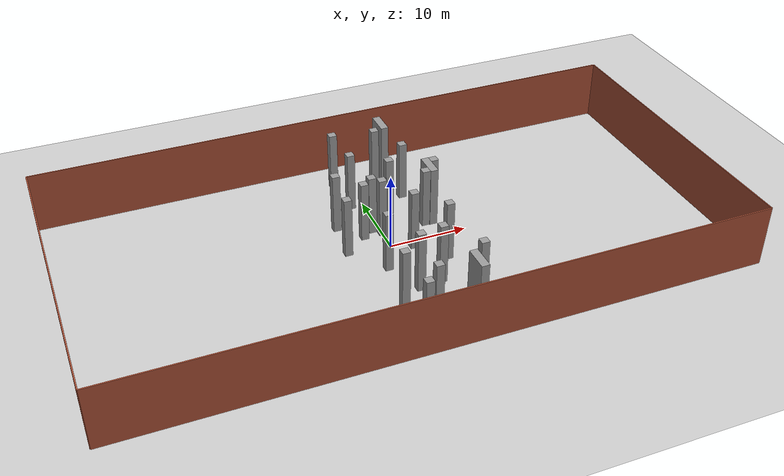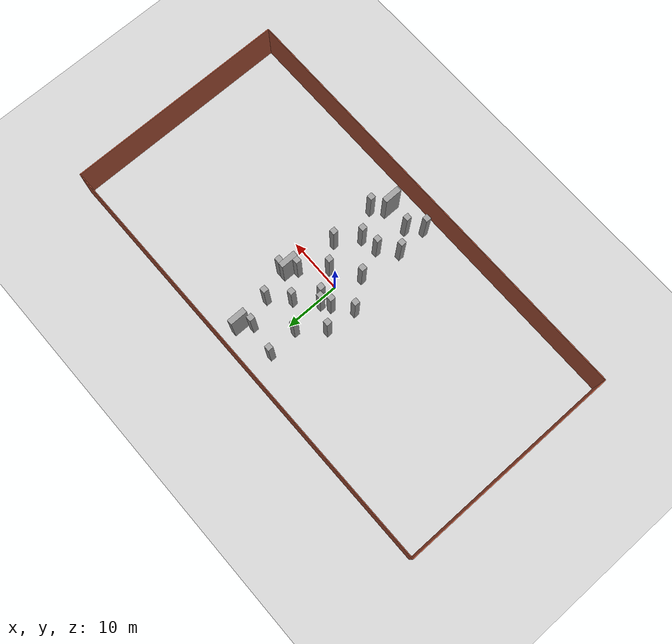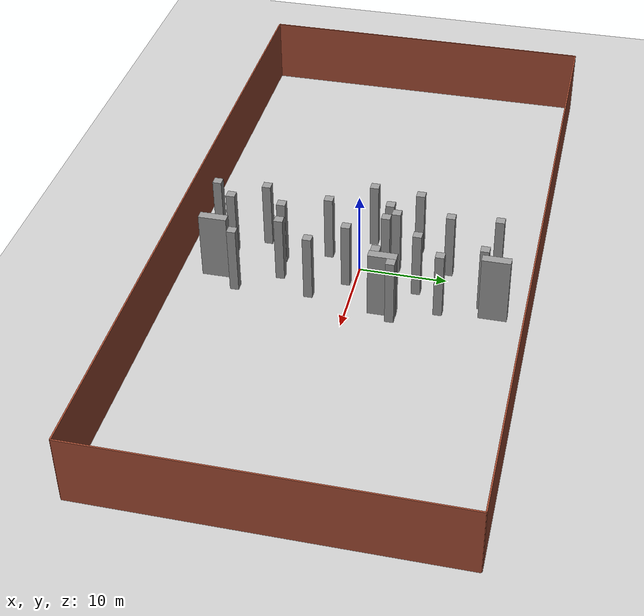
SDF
<sdf version="1.7">
 <world name="default">
  <model name="ground_plane">
   <static>1</static>
   <link name="link">
    <collision name="collision">
     <geometry><plane><normal>0 0 1</normal><size>100 100</size></plane></geometry>
     <surface>
      <contact><collide_bitmask>65535</collide_bitmask></contact>
      <friction><ode><mu>100</mu><mu2>50</mu2></ode></friction>
     </surface>
    </collision>
    <visual name="visual">
     <cast_shadows>0</cast_shadows>
     <geometry><plane><normal>0 0 1</normal><size>100 100</size></plane></geometry>
     <material>
      <script><uri>file://media/materials/scripts/gazebo.material</uri><name>Gazebo/Grey</name></script>
     </material>
    </visual>
   </link>
  </model>
  <model name="sim_room_rect">
   <link name="Wall_14">
    <collision name="Wall_14_Collision">
     <geometry><box><size>40 0.15 8</size></box></geometry>
     <pose>0 0 4 0 -0 0</pose>
    </collision>
    <visual name="Wall_14_Visual">
     <pose>0 0 4 0 -0 0</pose>
     <geometry><box><size>40 0.15 8</size></box></geometry>
     <material>
      <script><uri>file://media/materials/scripts/gazebo.material</uri><name>Gazebo/Bricks</name></script>
      <ambient>1 1 1 1</ambient>
     </material>
     <meta><layer>0</layer></meta>
    </visual>
    <pose>40 -0 0 0 -0 -1.5708</pose>
   </link>
   <link name="Wall_15">
    <collision name="Wall_15_Collision">
     <geometry><box><size>80 0.15 8</size></box></geometry>
     <pose>0 0 4 0 -0 0</pose>
    </collision>
    <visual name="Wall_15_Visual">
     <pose>0 0 4 0 -0 0</pose>
     <geometry><box><size>80 0.15 8</size></box></geometry>
     <material>
      <script><uri>file://media/materials/scripts/gazebo.material</uri><name>Gazebo/Bricks</name></script>
      <ambient>1 1 1 1</ambient>
     </material>
     <meta><layer>0</layer></meta>
    </visual>
    <pose>0 -20 0 0 -0 3.14159</pose>
   </link>
   <link name="Wall_16">
    <collision name="Wall_16_Collision">
     <geometry><box><size>40 0.15 8</size></box></geometry>
     <pose>0 0 4 0 -0 0</pose>
    </collision>
    <visual name="Wall_16_Visual">
     <pose>0 0 4 0 -0 0</pose>
     <geometry><box><size>40 0.15 8</size></box></geometry>
     <material>
      <script><uri>file://media/materials/scripts/gazebo.material</uri><name>Gazebo/Bricks</name></script>
      <ambient>1 1 1 1</ambient>
     </material>
     <meta><layer>0</layer></meta>
    </visual>
    <pose>-40 -0 0 0 -0 1.5708</pose>
   </link>
   <link name="Wall_19">
    <collision name="Wall_19_Collision">
     <geometry><box><size>80 0.15 8</size></box></geometry>
     <pose>0 0 4 0 -0 0</pose>
    </collision>
    <visual name="Wall_19_Visual">
     <pose>0 0 4 0 -0 0</pose>
     <geometry><box><size>80 0.15 8</size></box></geometry>
     <material>
      <script><uri>file://media/materials/scripts/gazebo.material</uri><name>Gazebo/Bricks</name></script>
      <ambient>1 1 1 1</ambient>
     </material>
     <meta><layer>0</layer></meta>
    </visual>
    <pose>0 20 0 0 -0 0</pose>
   </link>
   <static>1</static>
  </model>
  <model name="unit_box_static_clone_6">
   <link name="link">
    <inertial>
     <mass>1</mass>
     <inertia>
      <ixx>0.166667</ixx>
      <ixy>0</ixy>
      <ixz>0</ixz>
      <iyy>0.166667</iyy>
      <iyz>0</iyz>
      <izz>0.166667</izz>
     </inertia>
    </inertial>
    <visual name="visual">
     <geometry><box><size>1 1 8.00001</size></box></geometry>
     <material>
      <script><name>Gazebo/Grey</name><uri>file://media/materials/scripts/gazebo.material</uri></script>
      <shader type="pixel"/>
     </material>
    </visual>
    <collision name="collision">
     <geometry><box><size>1 1 8.00001</size></box></geometry>
     <surface>
      <friction>
       <ode><mu>1</mu><mu2>1</mu2><fdir1>0 0 0</fdir1><slip1>0</slip1><slip2>0</slip2></ode>
       <torsional>
        <coefficient>1</coefficient>
        <patch_radius>0</patch_radius>
        <surface_radius>0</surface_radius>
        <use_patch_radius>1</use_patch_radius>
        <ode><slip>0</slip></ode>
       </torsional>
      </friction>
      <bounce><restitution_coefficient>0</restitution_coefficient><threshold>1e+06</threshold></bounce>
      <contact>
       <collide_without_contact>0</collide_without_contact>
       <collide_without_contact_bitmask>1</collide_without_contact_bitmask>
       <collide_bitmask>1</collide_bitmask>
       <ode>
        <soft_cfm>0</soft_cfm>
        <soft_erp>0.2</soft_erp>
        <kp>1e+13</kp>
        <kd>1</kd>
        <max_vel>0.01</max_vel>
        <min_depth>0</min_depth>
       </ode>
       <bullet>
        <split_impulse>1</split_impulse>
        <split_impulse_penetration_threshold>-0.01</split_impulse_penetration_threshold>
        <soft_cfm>0</soft_cfm>
        <soft_erp>0.2</soft_erp>
        <kp>1e+13</kp>
        <kd>1</kd>
       </bullet>
      </contact>
     </surface>
    </collision>
   </link>
   <static>1</static>
   <pose>-5 6 4 0 -0 0</pose>
  </model>
  <model name="unit_box_static_clone_19">
   <link name="link">
    <inertial>
     <mass>1</mass>
     <inertia>
      <ixx>0.166667</ixx>
      <ixy>0</ixy>
      <ixz>0</ixz>
      <iyy>0.166667</iyy>
      <iyz>0</iyz>
      <izz>0.166667</izz>
     </inertia>
    </inertial>
    <visual name="visual">
     <geometry><box><size>1 1 8.00001</size></box></geometry>
     <material>
      <script><name>Gazebo/Grey</name><uri>file://media/materials/scripts/gazebo.material</uri></script>
      <shader type="pixel"/>
     </material>
    </visual>
    <collision name="collision">
     <geometry><box><size>1 1 8.00001</size></box></geometry>
     <surface>
      <friction>
       <ode><mu>1</mu><mu2>1</mu2><fdir1>0 0 0</fdir1><slip1>0</slip1><slip2>0</slip2></ode>
       <torsional>
        <coefficient>1</coefficient>
        <patch_radius>0</patch_radius>
        <surface_radius>0</surface_radius>
        <use_patch_radius>1</use_patch_radius>
        <ode><slip>0</slip></ode>
       </torsional>
      </friction>
      <bounce><restitution_coefficient>0</restitution_coefficient><threshold>1e+06</threshold></bounce>
      <contact>
       <collide_without_contact>0</collide_without_contact>
       <collide_without_contact_bitmask>1</collide_without_contact_bitmask>
       <collide_bitmask>1</collide_bitmask>
       <ode>
        <soft_cfm>0</soft_cfm>
        <soft_erp>0.2</soft_erp>
        <kp>1e+13</kp>
        <kd>1</kd>
        <max_vel>0.01</max_vel>
        <min_depth>0</min_depth>
       </ode>
       <bullet>
        <split_impulse>1</split_impulse>
        <split_impulse_penetration_threshold>-0.01</split_impulse_penetration_threshold>
        <soft_cfm>0</soft_cfm>
        <soft_erp>0.2</soft_erp>
        <kp>1e+13</kp>
        <kd>1</kd>
       </bullet>
      </contact>
     </surface>
    </collision>
   </link>
   <static>1</static>
   <pose>-2 15.4448 4 0 -0 0</pose>
  </model>
  <model name="unit_box_static_clone_20">
   <link name="link">
    <inertial>
     <mass>1</mass>
     <inertia>
      <ixx>0.166667</ixx>
      <ixy>0</ixy>
      <ixz>0</ixz>
      <iyy>0.166667</iyy>
      <iyz>0</iyz>
      <izz>0.166667</izz>
     </inertia>
    </inertial>
    <visual name="visual">
     <geometry><box><size>1 1 8.00001</size></box></geometry>
     <material>
      <script><name>Gazebo/Grey</name><uri>file://media/materials/scripts/gazebo.material</uri></script>
      <shader type="pixel"/>
     </material>
    </visual>
    <collision name="collision">
     <geometry><box><size>1 1 8.00001</size></box></geometry>
     <surface>
      <friction>
       <ode><mu>1</mu><mu2>1</mu2><fdir1>0 0 0</fdir1><slip1>0</slip1><slip2>0</slip2></ode>
       <torsional>
        <coefficient>1</coefficient>
        <patch_radius>0</patch_radius>
        <surface_radius>0</surface_radius>
        <use_patch_radius>1</use_patch_radius>
        <ode><slip>0</slip></ode>
       </torsional>
      </friction>
      <bounce><restitution_coefficient>0</restitution_coefficient><threshold>1e+06</threshold></bounce>
      <contact>
       <collide_without_contact>0</collide_without_contact>
       <collide_without_contact_bitmask>1</collide_without_contact_bitmask>
       <collide_bitmask>1</collide_bitmask>
       <ode>
        <soft_cfm>0</soft_cfm>
        <soft_erp>0.2</soft_erp>
        <kp>1e+13</kp>
        <kd>1</kd>
        <max_vel>0.01</max_vel>
        <min_depth>0</min_depth>
       </ode>
       <bullet>
        <split_impulse>1</split_impulse>
        <split_impulse_penetration_threshold>-0.01</split_impulse_penetration_threshold>
        <soft_cfm>0</soft_cfm>
        <soft_erp>0.2</soft_erp>
        <kp>1e+13</kp>
        <kd>1</kd>
       </bullet>
      </contact>
     </surface>
    </collision>
   </link>
   <static>1</static>
   <pose>3.47476 14.545 4 0 -0 0</pose>
  </model>
  <model name="unit_box_static_clone_22">
   <link name="link">
    <inertial>
     <mass>1</mass>
     <inertia>
      <ixx>0.166667</ixx>
      <ixy>0</ixy>
      <ixz>0</ixz>
      <iyy>0.166667</iyy>
      <iyz>0</iyz>
      <izz>0.166667</izz>
     </inertia>
    </inertial>
    <visual name="visual">
     <geometry><box><size>1 1 8.00001</size></box></geometry>
     <material>
      <script><name>Gazebo/Grey</name><uri>file://media/materials/scripts/gazebo.material</uri></script>
      <shader type="pixel"/>
     </material>
    </visual>
    <collision name="collision">
     <geometry><box><size>1 1 8.00001</size></box></geometry>
     <surface>
      <friction>
       <ode><mu>1</mu><mu2>1</mu2><fdir1>0 0 0</fdir1><slip1>0</slip1><slip2>0</slip2></ode>
       <torsional>
        <coefficient>1</coefficient>
        <patch_radius>0</patch_radius>
        <surface_radius>0</surface_radius>
        <use_patch_radius>1</use_patch_radius>
        <ode><slip>0</slip></ode>
       </torsional>
      </friction>
      <bounce><restitution_coefficient>0</restitution_coefficient><threshold>1e+06</threshold></bounce>
      <contact>
       <collide_without_contact>0</collide_without_contact>
       <collide_without_contact_bitmask>1</collide_without_contact_bitmask>
       <collide_bitmask>1</collide_bitmask>
       <ode>
        <soft_cfm>0</soft_cfm>
        <soft_erp>0.2</soft_erp>
        <kp>1e+13</kp>
        <kd>1</kd>
        <max_vel>0.01</max_vel>
        <min_depth>0</min_depth>
       </ode>
       <bullet>
        <split_impulse>1</split_impulse>
        <split_impulse_penetration_threshold>-0.01</split_impulse_penetration_threshold>
        <soft_cfm>0</soft_cfm>
        <soft_erp>0.2</soft_erp>
        <kp>1e+13</kp>
        <kd>1</kd>
       </bullet>
      </contact>
     </surface>
    </collision>
   </link>
   <static>1</static>
   <pose>7.81147 5.05751 4 0 -0 0</pose>
  </model>
  <model name="unit_box_static_clone_24">
   <link name="link">
    <inertial>
     <mass>1</mass>
     <inertia>
      <ixx>0.166667</ixx>
      <ixy>0</ixy>
      <ixz>0</ixz>
      <iyy>0.166667</iyy>
      <iyz>0</iyz>
      <izz>0.166667</izz>
     </inertia>
    </inertial>
    <visual name="visual">
     <geometry><box><size>1 1 8.00001</size></box></geometry>
     <material>
      <script><name>Gazebo/Grey</name><uri>file://media/materials/scripts/gazebo.material</uri></script>
      <shader type="pixel"/>
     </material>
    </visual>
    <collision name="collision">
     <geometry><box><size>1 1 8.00001</size></box></geometry>
     <surface>
      <friction>
       <ode><mu>1</mu><mu2>1</mu2><fdir1>0 0 0</fdir1><slip1>0</slip1><slip2>0</slip2></ode>
       <torsional>
        <coefficient>1</coefficient>
        <patch_radius>0</patch_radius>
        <surface_radius>0</surface_radius>
        <use_patch_radius>1</use_patch_radius>
        <ode><slip>0</slip></ode>
       </torsional>
      </friction>
      <bounce><restitution_coefficient>0</restitution_coefficient><threshold>1e+06</threshold></bounce>
      <contact>
       <collide_without_contact>0</collide_without_contact>
       <collide_without_contact_bitmask>1</collide_without_contact_bitmask>
       <collide_bitmask>1</collide_bitmask>
       <ode>
        <soft_cfm>0</soft_cfm>
        <soft_erp>0.2</soft_erp>
        <kp>1e+13</kp>
        <kd>1</kd>
        <max_vel>0.01</max_vel>
        <min_depth>0</min_depth>
       </ode>
       <bullet>
        <split_impulse>1</split_impulse>
        <split_impulse_penetration_threshold>-0.01</split_impulse_penetration_threshold>
        <soft_cfm>0</soft_cfm>
        <soft_erp>0.2</soft_erp>
        <kp>1e+13</kp>
        <kd>1</kd>
       </bullet>
      </contact>
     </surface>
    </collision>
   </link>
   <static>1</static>
   <pose>2.50825 7 4 0 -0 0</pose>
  </model>
  <model name="unit_box_static_clone_25">
   <link name="link">
    <inertial>
     <mass>1</mass>
     <inertia>
      <ixx>0.166667</ixx>
      <ixy>0</ixy>
      <ixz>0</ixz>
      <iyy>0.166667</iyy>
      <iyz>0</iyz>
      <izz>0.166667</izz>
     </inertia>
    </inertial>
    <visual name="visual">
     <geometry><box><size>1 1 8.00001</size></box></geometry>
     <material>
      <script><name>Gazebo/Grey</name><uri>file://media/materials/scripts/gazebo.material</uri></script>
      <shader type="pixel"/>
     </material>
    </visual>
    <collision name="collision">
     <geometry><box><size>1 1 8.00001</size></box></geometry>
     <surface>
      <friction>
       <ode><mu>1</mu><mu2>1</mu2><fdir1>0 0 0</fdir1><slip1>0</slip1><slip2>0</slip2></ode>
       <torsional>
        <coefficient>1</coefficient>
        <patch_radius>0</patch_radius>
        <surface_radius>0</surface_radius>
        <use_patch_radius>1</use_patch_radius>
        <ode><slip>0</slip></ode>
       </torsional>
      </friction>
      <bounce><restitution_coefficient>0</restitution_coefficient><threshold>1e+06</threshold></bounce>
      <contact>
       <collide_without_contact>0</collide_without_contact>
       <collide_without_contact_bitmask>1</collide_without_contact_bitmask>
       <collide_bitmask>1</collide_bitmask>
       <ode>
        <soft_cfm>0</soft_cfm>
        <soft_erp>0.2</soft_erp>
        <kp>1e+13</kp>
        <kd>1</kd>
        <max_vel>0.01</max_vel>
        <min_depth>0</min_depth>
       </ode>
       <bullet>
        <split_impulse>1</split_impulse>
        <split_impulse_penetration_threshold>-0.01</split_impulse_penetration_threshold>
        <soft_cfm>0</soft_cfm>
        <soft_erp>0.2</soft_erp>
        <kp>1e+13</kp>
        <kd>1</kd>
       </bullet>
      </contact>
     </surface>
    </collision>
   </link>
   <static>1</static>
   <pose>-1.57746 10 4 0 -0 0</pose>
  </model>
  <model name="unit_box_static_clone_28">
   <link name="link">
    <inertial>
     <mass>1</mass>
     <inertia>
      <ixx>0.166667</ixx>
      <ixy>0</ixy>
      <ixz>0</ixz>
      <iyy>0.166667</iyy>
      <iyz>0</iyz>
      <izz>0.166667</izz>
     </inertia>
    </inertial>
    <visual name="visual">
     <geometry><box><size>1 1 8.00001</size></box></geometry>
     <material>
      <script><name>Gazebo/Grey</name><uri>file://media/materials/scripts/gazebo.material</uri></script>
      <shader type="pixel"/>
     </material>
    </visual>
    <collision name="collision">
     <geometry><box><size>1 1 8.00001</size></box></geometry>
     <surface>
      <friction>
       <ode><mu>1</mu><mu2>1</mu2><fdir1>0 0 0</fdir1><slip1>0</slip1><slip2>0</slip2></ode>
       <torsional>
        <coefficient>1</coefficient>
        <patch_radius>0</patch_radius>
        <surface_radius>0</surface_radius>
        <use_patch_radius>1</use_patch_radius>
        <ode><slip>0</slip></ode>
       </torsional>
      </friction>
      <bounce><restitution_coefficient>0</restitution_coefficient><threshold>1e+06</threshold></bounce>
      <contact>
       <collide_without_contact>0</collide_without_contact>
       <collide_without_contact_bitmask>1</collide_without_contact_bitmask>
       <collide_bitmask>1</collide_bitmask>
       <ode>
        <soft_cfm>0</soft_cfm>
        <soft_erp>0.2</soft_erp>
        <kp>1e+13</kp>
        <kd>1</kd>
        <max_vel>0.01</max_vel>
        <min_depth>0</min_depth>
       </ode>
       <bullet>
        <split_impulse>1</split_impulse>
        <split_impulse_penetration_threshold>-0.01</split_impulse_penetration_threshold>
        <soft_cfm>0</soft_cfm>
        <soft_erp>0.2</soft_erp>
        <kp>1e+13</kp>
        <kd>1</kd>
       </bullet>
      </contact>
     </surface>
    </collision>
   </link>
   <static>1</static>
   <pose>-0.448273 -15 4 0 -0 0</pose>
  </model>
  <model name="unit_box_static_clone_29">
   <link name="link">
    <inertial>
     <mass>1</mass>
     <inertia>
      <ixx>0.166667</ixx>
      <ixy>0</ixy>
      <ixz>0</ixz>
      <iyy>0.166667</iyy>
      <iyz>0</iyz>
      <izz>0.166667</izz>
     </inertia>
    </inertial>
    <visual name="visual">
     <geometry><box><size>1 1 8.00001</size></box></geometry>
     <material>
      <script><name>Gazebo/Grey</name><uri>file://media/materials/scripts/gazebo.material</uri></script>
      <shader type="pixel"/>
     </material>
    </visual>
    <collision name="collision">
     <geometry><box><size>1 1 8.00001</size></box></geometry>
     <surface>
      <friction>
       <ode><mu>1</mu><mu2>1</mu2><fdir1>0 0 0</fdir1><slip1>0</slip1><slip2>0</slip2></ode>
       <torsional>
        <coefficient>1</coefficient>
        <patch_radius>0</patch_radius>
        <surface_radius>0</surface_radius>
        <use_patch_radius>1</use_patch_radius>
        <ode><slip>0</slip></ode>
       </torsional>
      </friction>
      <bounce><restitution_coefficient>0</restitution_coefficient><threshold>1e+06</threshold></bounce>
      <contact>
       <collide_without_contact>0</collide_without_contact>
       <collide_without_contact_bitmask>1</collide_without_contact_bitmask>
       <collide_bitmask>1</collide_bitmask>
       <ode>
        <soft_cfm>0</soft_cfm>
        <soft_erp>0.2</soft_erp>
        <kp>1e+13</kp>
        <kd>1</kd>
        <max_vel>0.01</max_vel>
        <min_depth>0</min_depth>
       </ode>
       <bullet>
        <split_impulse>1</split_impulse>
        <split_impulse_penetration_threshold>-0.01</split_impulse_penetration_threshold>
        <soft_cfm>0</soft_cfm>
        <soft_erp>0.2</soft_erp>
        <kp>1e+13</kp>
        <kd>1</kd>
       </bullet>
      </contact>
     </surface>
    </collision>
   </link>
   <static>1</static>
   <pose>6 -13 4 0 -0 0</pose>
  </model>
  <model name="unit_box_static_clone_32">
   <link name="link">
    <inertial>
     <mass>1</mass>
     <inertia>
      <ixx>0.166667</ixx>
      <ixy>0</ixy>
      <ixz>0</ixz>
      <iyy>0.166667</iyy>
      <iyz>0</iyz>
      <izz>0.166667</izz>
     </inertia>
    </inertial>
    <visual name="visual">
     <geometry><box><size>1 1 8.00001</size></box></geometry>
     <material>
      <script><name>Gazebo/Grey</name><uri>file://media/materials/scripts/gazebo.material</uri></script>
      <shader type="pixel"/>
     </material>
    </visual>
    <collision name="collision">
     <geometry><box><size>1 1 8.00001</size></box></geometry>
     <surface>
      <friction>
       <ode><mu>1</mu><mu2>1</mu2><fdir1>0 0 0</fdir1><slip1>0</slip1><slip2>0</slip2></ode>
       <torsional>
        <coefficient>1</coefficient>
        <patch_radius>0</patch_radius>
        <surface_radius>0</surface_radius>
        <use_patch_radius>1</use_patch_radius>
        <ode><slip>0</slip></ode>
       </torsional>
      </friction>
      <bounce><restitution_coefficient>0</restitution_coefficient><threshold>1e+06</threshold></bounce>
      <contact>
       <collide_without_contact>0</collide_without_contact>
       <collide_without_contact_bitmask>1</collide_without_contact_bitmask>
       <collide_bitmask>1</collide_bitmask>
       <ode>
        <soft_cfm>0</soft_cfm>
        <soft_erp>0.2</soft_erp>
        <kp>1e+13</kp>
        <kd>1</kd>
        <max_vel>0.01</max_vel>
        <min_depth>0</min_depth>
       </ode>
       <bullet>
        <split_impulse>1</split_impulse>
        <split_impulse_penetration_threshold>-0.01</split_impulse_penetration_threshold>
        <soft_cfm>0</soft_cfm>
        <soft_erp>0.2</soft_erp>
        <kp>1e+13</kp>
        <kd>1</kd>
       </bullet>
      </contact>
     </surface>
    </collision>
   </link>
   <static>1</static>
   <pose>0 -9 4 0 -0 0</pose>
  </model>
  <model name="unit_box_static_clone_34">
   <link name="link">
    <inertial>
     <mass>1</mass>
     <inertia>
      <ixx>0.166667</ixx>
      <ixy>0</ixy>
      <ixz>0</ixz>
      <iyy>0.166667</iyy>
      <iyz>0</iyz>
      <izz>0.166667</izz>
     </inertia>
    </inertial>
    <visual name="visual">
     <geometry><box><size>1 1 8.00001</size></box></geometry>
     <material>
      <script><name>Gazebo/Grey</name><uri>file://media/materials/scripts/gazebo.material</uri></script>
      <shader type="pixel"/>
     </material>
    </visual>
    <collision name="collision">
     <geometry><box><size>1 1 8.00001</size></box></geometry>
     <surface>
      <friction>
       <ode><mu>1</mu><mu2>1</mu2><fdir1>0 0 0</fdir1><slip1>0</slip1><slip2>0</slip2></ode>
       <torsional>
        <coefficient>1</coefficient>
        <patch_radius>0</patch_radius>
        <surface_radius>0</surface_radius>
        <use_patch_radius>1</use_patch_radius>
        <ode><slip>0</slip></ode>
       </torsional>
      </friction>
      <bounce><restitution_coefficient>0</restitution_coefficient><threshold>1e+06</threshold></bounce>
      <contact>
       <collide_without_contact>0</collide_without_contact>
       <collide_without_contact_bitmask>1</collide_without_contact_bitmask>
       <collide_bitmask>1</collide_bitmask>
       <ode>
        <soft_cfm>0</soft_cfm>
        <soft_erp>0.2</soft_erp>
        <kp>1e+13</kp>
        <kd>1</kd>
        <max_vel>0.01</max_vel>
        <min_depth>0</min_depth>
       </ode>
       <bullet>
        <split_impulse>1</split_impulse>
        <split_impulse_penetration_threshold>-0.01</split_impulse_penetration_threshold>
        <soft_cfm>0</soft_cfm>
        <soft_erp>0.2</soft_erp>
        <kp>1e+13</kp>
        <kd>1</kd>
       </bullet>
      </contact>
     </surface>
    </collision>
   </link>
   <static>1</static>
   <pose>5.58496 -4.59929 4 0 -0 0</pose>
  </model>
  <model name="unit_box_static_clone_35">
   <link name="link">
    <inertial>
     <mass>1</mass>
     <inertia>
      <ixx>0.166667</ixx>
      <ixy>0</ixy>
      <ixz>0</ixz>
      <iyy>0.166667</iyy>
      <iyz>0</iyz>
      <izz>0.166667</izz>
     </inertia>
    </inertial>
    <visual name="visual">
     <geometry><box><size>1 1 8.00001</size></box></geometry>
     <material>
      <script><name>Gazebo/Grey</name><uri>file://media/materials/scripts/gazebo.material</uri></script>
      <shader type="pixel"/>
     </material>
    </visual>
    <collision name="collision">
     <geometry><box><size>1 1 8.00001</size></box></geometry>
     <surface>
      <friction>
       <ode><mu>1</mu><mu2>1</mu2><fdir1>0 0 0</fdir1><slip1>0</slip1><slip2>0</slip2></ode>
       <torsional>
        <coefficient>1</coefficient>
        <patch_radius>0</patch_radius>
        <surface_radius>0</surface_radius>
        <use_patch_radius>1</use_patch_radius>
        <ode><slip>0</slip></ode>
       </torsional>
      </friction>
      <bounce><restitution_coefficient>0</restitution_coefficient><threshold>1e+06</threshold></bounce>
      <contact>
       <collide_without_contact>0</collide_without_contact>
       <collide_without_contact_bitmask>1</collide_without_contact_bitmask>
       <collide_bitmask>1</collide_bitmask>
       <ode>
        <soft_cfm>0</soft_cfm>
        <soft_erp>0.2</soft_erp>
        <kp>1e+13</kp>
        <kd>1</kd>
        <max_vel>0.01</max_vel>
        <min_depth>0</min_depth>
       </ode>
       <bullet>
        <split_impulse>1</split_impulse>
        <split_impulse_penetration_threshold>-0.01</split_impulse_penetration_threshold>
        <soft_cfm>0</soft_cfm>
        <soft_erp>0.2</soft_erp>
        <kp>1e+13</kp>
        <kd>1</kd>
       </bullet>
      </contact>
     </surface>
    </collision>
   </link>
   <static>1</static>
   <pose>-2 -4 4 0 -0 0</pose>
  </model>
  <model name="unit_box_static_clone_71">
   <link name="link">
    <inertial>
     <mass>1</mass>
     <inertia>
      <ixx>0.166667</ixx>
      <ixy>0</ixy>
      <ixz>0</ixz>
      <iyy>0.166667</iyy>
      <iyz>0</iyz>
      <izz>0.166667</izz>
     </inertia>
    </inertial>
    <visual name="visual">
     <geometry><box><size>1 1 8.00001</size></box></geometry>
     <material>
      <script><name>Gazebo/Grey</name><uri>file://media/materials/scripts/gazebo.material</uri></script>
      <shader type="pixel"/>
     </material>
    </visual>
    <collision name="collision">
     <geometry><box><size>1 1 8.00001</size></box></geometry>
     <surface>
      <friction>
       <ode><mu>1</mu><mu2>1</mu2><fdir1>0 0 0</fdir1><slip1>0</slip1><slip2>0</slip2></ode>
       <torsional>
        <coefficient>1</coefficient>
        <patch_radius>0</patch_radius>
        <surface_radius>0</surface_radius>
        <use_patch_radius>1</use_patch_radius>
        <ode><slip>0</slip></ode>
       </torsional>
      </friction>
      <bounce><restitution_coefficient>0</restitution_coefficient><threshold>1e+06</threshold></bounce>
      <contact>
       <collide_without_contact>0</collide_without_contact>
       <collide_without_contact_bitmask>1</collide_without_contact_bitmask>
       <collide_bitmask>1</collide_bitmask>
       <ode>
        <soft_cfm>0</soft_cfm>
        <soft_erp>0.2</soft_erp>
        <kp>1e+13</kp>
        <kd>1</kd>
        <max_vel>0.01</max_vel>
        <min_depth>0</min_depth>
       </ode>
       <bullet>
        <split_impulse>1</split_impulse>
        <split_impulse_penetration_threshold>-0.01</split_impulse_penetration_threshold>
        <soft_cfm>0</soft_cfm>
        <soft_erp>0.2</soft_erp>
        <kp>1e+13</kp>
        <kd>1</kd>
       </bullet>
      </contact>
     </surface>
    </collision>
   </link>
   <static>1</static>
   <pose>-2.63994 -17.2294 4 0 -0 0</pose>
  </model>
  <model name="unit_box_static_clone_37_clone_0">
   <link name="link">
    <inertial>
     <mass>1</mass>
     <inertia>
      <ixx>0.166667</ixx>
      <ixy>0</ixy>
      <ixz>0</ixz>
      <iyy>0.166667</iyy>
      <iyz>0</iyz>
      <izz>0.166667</izz>
     </inertia>
    </inertial>
    <visual name="visual">
     <geometry><box><size>1 3.16921 8.00001</size></box></geometry>
     <material>
      <script><name>Gazebo/Grey</name><uri>file://media/materials/scripts/gazebo.material</uri></script>
      <shader type="pixel"/>
     </material>
    </visual>
    <collision name="collision">
     <geometry><box><size>1 3.16921 8.00001</size></box></geometry>
     <surface>
      <friction>
       <ode><mu>1</mu><mu2>1</mu2><fdir1>0 0 0</fdir1><slip1>0</slip1><slip2>0</slip2></ode>
       <torsional>
        <coefficient>1</coefficient>
        <patch_radius>0</patch_radius>
        <surface_radius>0</surface_radius>
        <use_patch_radius>1</use_patch_radius>
        <ode><slip>0</slip></ode>
       </torsional>
      </friction>
      <bounce><restitution_coefficient>0</restitution_coefficient><threshold>1e+06</threshold></bounce>
      <contact>
       <collide_without_contact>0</collide_without_contact>
       <collide_without_contact_bitmask>1</collide_without_contact_bitmask>
       <collide_bitmask>1</collide_bitmask>
       <ode>
        <soft_cfm>0</soft_cfm>
        <soft_erp>0.2</soft_erp>
        <kp>1e+13</kp>
        <kd>1</kd>
        <max_vel>0.01</max_vel>
        <min_depth>0</min_depth>
       </ode>
       <bullet>
        <split_impulse>1</split_impulse>
        <split_impulse_penetration_threshold>-0.01</split_impulse_penetration_threshold>
        <soft_cfm>0</soft_cfm>
        <soft_erp>0.2</soft_erp>
        <kp>1e+13</kp>
        <kd>1</kd>
       </bullet>
      </contact>
     </surface>
    </collision>
   </link>
   <static>1</static>
   <pose>6.81109 3.99226 4 0 -0 0</pose>
  </model>
  <model name="unit_box_static_clone_37_clone_7">
   <link name="link">
    <inertial>
     <mass>1</mass>
     <inertia>
      <ixx>0.166667</ixx>
      <ixy>0</ixy>
      <ixz>0</ixz>
      <iyy>0.166667</iyy>
      <iyz>0</iyz>
      <izz>0.166667</izz>
     </inertia>
    </inertial>
    <visual name="visual">
     <geometry><box><size>1 3.16921 8.00001</size></box></geometry>
     <material>
      <script><name>Gazebo/Grey</name><uri>file://media/materials/scripts/gazebo.material</uri></script>
      <shader type="pixel"/>
     </material>
    </visual>
    <collision name="collision">
     <geometry><box><size>1 3.16921 8.00001</size></box></geometry>
     <surface>
      <friction>
       <ode><mu>1</mu><mu2>1</mu2><fdir1>0 0 0</fdir1><slip1>0</slip1><slip2>0</slip2></ode>
       <torsional>
        <coefficient>1</coefficient>
        <patch_radius>0</patch_radius>
        <surface_radius>0</surface_radius>
        <use_patch_radius>1</use_patch_radius>
        <ode><slip>0</slip></ode>
       </torsional>
      </friction>
      <bounce><restitution_coefficient>0</restitution_coefficient><threshold>1e+06</threshold></bounce>
      <contact>
       <collide_without_contact>0</collide_without_contact>
       <collide_without_contact_bitmask>1</collide_without_contact_bitmask>
       <collide_bitmask>1</collide_bitmask>
       <ode>
        <soft_cfm>0</soft_cfm>
        <soft_erp>0.2</soft_erp>
        <kp>1e+13</kp>
        <kd>1</kd>
        <max_vel>0.01</max_vel>
        <min_depth>0</min_depth>
       </ode>
       <bullet>
        <split_impulse>1</split_impulse>
        <split_impulse_penetration_threshold>-0.01</split_impulse_penetration_threshold>
        <soft_cfm>0</soft_cfm>
        <soft_erp>0.2</soft_erp>
        <kp>1e+13</kp>
        <kd>1</kd>
       </bullet>
      </contact>
     </surface>
    </collision>
   </link>
   <static>1</static>
   <pose>4.06553 -15.7347 4 0 -0 0</pose>
  </model>
  <model name="unit_box_static_clone_37_clone_9">
   <link name="link">
    <inertial>
     <mass>1</mass>
     <inertia>
      <ixx>0.166667</ixx>
      <ixy>0</ixy>
      <ixz>0</ixz>
      <iyy>0.166667</iyy>
      <iyz>0</iyz>
      <izz>0.166667</izz>
     </inertia>
    </inertial>
    <visual name="visual">
     <geometry><box><size>1 3.16921 8.00001</size></box></geometry>
     <material>
      <script><name>Gazebo/Grey</name><uri>file://media/materials/scripts/gazebo.material</uri></script>
      <shader type="pixel"/>
     </material>
    </visual>
    <collision name="collision">
     <geometry><box><size>1 3.16921 8.00001</size></box></geometry>
     <surface>
      <friction>
       <ode><mu>1</mu><mu2>1</mu2><fdir1>0 0 0</fdir1><slip1>0</slip1><slip2>0</slip2></ode>
       <torsional>
        <coefficient>1</coefficient>
        <patch_radius>0</patch_radius>
        <surface_radius>0</surface_radius>
        <use_patch_radius>1</use_patch_radius>
        <ode><slip>0</slip></ode>
       </torsional>
      </friction>
      <bounce><restitution_coefficient>0</restitution_coefficient><threshold>1e+06</threshold></bounce>
      <contact>
       <collide_without_contact>0</collide_without_contact>
       <collide_without_contact_bitmask>1</collide_without_contact_bitmask>
       <collide_bitmask>1</collide_bitmask>
       <ode>
        <soft_cfm>0</soft_cfm>
        <soft_erp>0.2</soft_erp>
        <kp>1e+13</kp>
        <kd>1</kd>
        <max_vel>0.01</max_vel>
        <min_depth>0</min_depth>
       </ode>
       <bullet>
        <split_impulse>1</split_impulse>
        <split_impulse_penetration_threshold>-0.01</split_impulse_penetration_threshold>
        <soft_cfm>0</soft_cfm>
        <soft_erp>0.2</soft_erp>
        <kp>1e+13</kp>
        <kd>1</kd>
       </bullet>
      </contact>
     </surface>
    </collision>
   </link>
   <static>1</static>
   <pose>5 16 4 0 -0 0</pose>
  </model>
  <model name="unit_box_static_clone_35_clone">
   <link name="link">
    <inertial>
     <mass>1</mass>
     <inertia>
      <ixx>0.166667</ixx>
      <ixy>0</ixy>
      <ixz>0</ixz>
      <iyy>0.166667</iyy>
      <iyz>0</iyz>
      <izz>0.166667</izz>
     </inertia>
    </inertial>
    <visual name="visual">
     <geometry><box><size>1 1 8.00001</size></box></geometry>
     <material>
      <script><name>Gazebo/Grey</name><uri>file://media/materials/scripts/gazebo.material</uri></script>
      <shader type="pixel"/>
     </material>
    </visual>
    <collision name="collision">
     <geometry><box><size>1 1 8.00001</size></box></geometry>
     <surface>
      <friction>
       <ode><mu>1</mu><mu2>1</mu2><fdir1>0 0 0</fdir1><slip1>0</slip1><slip2>0</slip2></ode>
       <torsional>
        <coefficient>1</coefficient>
        <patch_radius>0</patch_radius>
        <surface_radius>0</surface_radius>
        <use_patch_radius>1</use_patch_radius>
        <ode><slip>0</slip></ode>
       </torsional>
      </friction>
      <bounce><restitution_coefficient>0</restitution_coefficient><threshold>1e+06</threshold></bounce>
      <contact>
       <collide_without_contact>0</collide_without_contact>
       <collide_without_contact_bitmask>1</collide_without_contact_bitmask>
       <collide_bitmask>1</collide_bitmask>
       <ode>
        <soft_cfm>0</soft_cfm>
        <soft_erp>0.2</soft_erp>
        <kp>1e+13</kp>
        <kd>1</kd>
        <max_vel>0.01</max_vel>
        <min_depth>0</min_depth>
       </ode>
       <bullet>
        <split_impulse>1</split_impulse>
        <split_impulse_penetration_threshold>-0.01</split_impulse_penetration_threshold>
        <soft_cfm>0</soft_cfm>
        <soft_erp>0.2</soft_erp>
        <kp>1e+13</kp>
        <kd>1</kd>
       </bullet>
      </contact>
     </surface>
    </collision>
   </link>
   <static>1</static>
   <pose>-2.40699 3 4 0 -0 0</pose>
  </model>
  <model name="unit_box_static_clone_35_clone_0">
   <link name="link">
    <inertial>
     <mass>1</mass>
     <inertia>
      <ixx>0.166667</ixx>
      <ixy>0</ixy>
      <ixz>0</ixz>
      <iyy>0.166667</iyy>
      <iyz>0</iyz>
      <izz>0.166667</izz>
     </inertia>
    </inertial>
    <visual name="visual">
     <geometry><box><size>1 1 8.00001</size></box></geometry>
     <material>
      <script><name>Gazebo/Grey</name><uri>file://media/materials/scripts/gazebo.material</uri></script>
      <shader type="pixel"/>
     </material>
    </visual>
    <collision name="collision">
     <geometry><box><size>1 1 8.00001</size></box></geometry>
     <surface>
      <friction>
       <ode><mu>1</mu><mu2>1</mu2><fdir1>0 0 0</fdir1><slip1>0</slip1><slip2>0</slip2></ode>
       <torsional>
        <coefficient>1</coefficient>
        <patch_radius>0</patch_radius>
        <surface_radius>0</surface_radius>
        <use_patch_radius>1</use_patch_radius>
        <ode><slip>0</slip></ode>
       </torsional>
      </friction>
      <bounce><restitution_coefficient>0</restitution_coefficient><threshold>1e+06</threshold></bounce>
      <contact>
       <collide_without_contact>0</collide_without_contact>
       <collide_without_contact_bitmask>1</collide_without_contact_bitmask>
       <collide_bitmask>1</collide_bitmask>
       <ode>
        <soft_cfm>0</soft_cfm>
        <soft_erp>0.2</soft_erp>
        <kp>1e+13</kp>
        <kd>1</kd>
        <max_vel>0.01</max_vel>
        <min_depth>0</min_depth>
       </ode>
       <bullet>
        <split_impulse>1</split_impulse>
        <split_impulse_penetration_threshold>-0.01</split_impulse_penetration_threshold>
        <soft_cfm>0</soft_cfm>
        <soft_erp>0.2</soft_erp>
        <kp>1e+13</kp>
        <kd>1</kd>
       </bullet>
      </contact>
     </surface>
    </collision>
   </link>
   <static>1</static>
   <pose>-1 4 4 0 -0 0</pose>
  </model>
  <model name="unit_box_static_clone_35_clone_1">
   <link name="link">
    <inertial>
     <mass>1</mass>
     <inertia>
      <ixx>0.166667</ixx>
      <ixy>0</ixy>
      <ixz>0</ixz>
      <iyy>0.166667</iyy>
      <iyz>0</iyz>
      <izz>0.166667</izz>
     </inertia>
    </inertial>
    <visual name="visual">
     <geometry><box><size>1 1 8.00001</size></box></geometry>
     <material>
      <script><name>Gazebo/Grey</name><uri>file://media/materials/scripts/gazebo.material</uri></script>
      <shader type="pixel"/>
     </material>
    </visual>
    <collision name="collision">
     <geometry><box><size>1 1 8.00001</size></box></geometry>
     <surface>
      <friction>
       <ode><mu>1</mu><mu2>1</mu2><fdir1>0 0 0</fdir1><slip1>0</slip1><slip2>0</slip2></ode>
       <torsional>
        <coefficient>1</coefficient>
        <patch_radius>0</patch_radius>
        <surface_radius>0</surface_radius>
        <use_patch_radius>1</use_patch_radius>
        <ode><slip>0</slip></ode>
       </torsional>
      </friction>
      <bounce><restitution_coefficient>0</restitution_coefficient><threshold>1e+06</threshold></bounce>
      <contact>
       <collide_without_contact>0</collide_without_contact>
       <collide_without_contact_bitmask>1</collide_without_contact_bitmask>
       <collide_bitmask>1</collide_bitmask>
       <ode>
        <soft_cfm>0</soft_cfm>
        <soft_erp>0.2</soft_erp>
        <kp>1e+13</kp>
        <kd>1</kd>
        <max_vel>0.01</max_vel>
        <min_depth>0</min_depth>
       </ode>
       <bullet>
        <split_impulse>1</split_impulse>
        <split_impulse_penetration_threshold>-0.01</split_impulse_penetration_threshold>
        <soft_cfm>0</soft_cfm>
        <soft_erp>0.2</soft_erp>
        <kp>1e+13</kp>
        <kd>1</kd>
       </bullet>
      </contact>
     </surface>
    </collision>
   </link>
   <static>1</static>
   <pose>0 3 4 0 -0 0</pose>
  </model>
  <model name="unit_box_static_clone_35_clone_2">
   <link name="link">
    <inertial>
     <mass>1</mass>
     <inertia>
      <ixx>0.166667</ixx>
      <ixy>0</ixy>
      <ixz>0</ixz>
      <iyy>0.166667</iyy>
      <iyz>0</iyz>
      <izz>0.166667</izz>
     </inertia>
    </inertial>
    <visual name="visual">
     <geometry><box><size>1 1 8.00001</size></box></geometry>
     <material>
      <script><name>Gazebo/Grey</name><uri>file://media/materials/scripts/gazebo.material</uri></script>
      <shader type="pixel"/>
     </material>
    </visual>
    <collision name="collision">
     <geometry><box><size>1 1 8.00001</size></box></geometry>
     <surface>
      <friction>
       <ode><mu>1</mu><mu2>1</mu2><fdir1>0 0 0</fdir1><slip1>0</slip1><slip2>0</slip2></ode>
       <torsional>
        <coefficient>1</coefficient>
        <patch_radius>0</patch_radius>
        <surface_radius>0</surface_radius>
        <use_patch_radius>1</use_patch_radius>
        <ode><slip>0</slip></ode>
       </torsional>
      </friction>
      <bounce><restitution_coefficient>0</restitution_coefficient><threshold>1e+06</threshold></bounce>
      <contact>
       <collide_without_contact>0</collide_without_contact>
       <collide_without_contact_bitmask>1</collide_without_contact_bitmask>
       <collide_bitmask>1</collide_bitmask>
       <ode>
        <soft_cfm>0</soft_cfm>
        <soft_erp>0.2</soft_erp>
        <kp>1e+13</kp>
        <kd>1</kd>
        <max_vel>0.01</max_vel>
        <min_depth>0</min_depth>
       </ode>
       <bullet>
        <split_impulse>1</split_impulse>
        <split_impulse_penetration_threshold>-0.01</split_impulse_penetration_threshold>
        <soft_cfm>0</soft_cfm>
        <soft_erp>0.2</soft_erp>
        <kp>1e+13</kp>
        <kd>1</kd>
       </bullet>
      </contact>
     </surface>
    </collision>
   </link>
   <static>1</static>
   <pose>5.81745 3 4 0 -0 0</pose>
  </model>
  <model name="unit_box_static_clone_35_clone_3">
   <link name="link">
    <inertial>
     <mass>1</mass>
     <inertia>
      <ixx>0.166667</ixx>
      <ixy>0</ixy>
      <ixz>0</ixz>
      <iyy>0.166667</iyy>
      <iyz>0</iyz>
      <izz>0.166667</izz>
     </inertia>
    </inertial>
    <visual name="visual">
     <geometry><box><size>1 1 8.00001</size></box></geometry>
     <material>
      <script><name>Gazebo/Grey</name><uri>file://media/materials/scripts/gazebo.material</uri></script>
      <shader type="pixel"/>
     </material>
    </visual>
    <collision name="collision">
     <geometry><box><size>1 1 8.00001</size></box></geometry>
     <surface>
      <friction>
       <ode><mu>1</mu><mu2>1</mu2><fdir1>0 0 0</fdir1><slip1>0</slip1><slip2>0</slip2></ode>
       <torsional>
        <coefficient>1</coefficient>
        <patch_radius>0</patch_radius>
        <surface_radius>0</surface_radius>
        <use_patch_radius>1</use_patch_radius>
        <ode><slip>0</slip></ode>
       </torsional>
      </friction>
      <bounce><restitution_coefficient>0</restitution_coefficient><threshold>1e+06</threshold></bounce>
      <contact>
       <collide_without_contact>0</collide_without_contact>
       <collide_without_contact_bitmask>1</collide_without_contact_bitmask>
       <collide_bitmask>1</collide_bitmask>
       <ode>
        <soft_cfm>0</soft_cfm>
        <soft_erp>0.2</soft_erp>
        <kp>1e+13</kp>
        <kd>1</kd>
        <max_vel>0.01</max_vel>
        <min_depth>0</min_depth>
       </ode>
       <bullet>
        <split_impulse>1</split_impulse>
        <split_impulse_penetration_threshold>-0.01</split_impulse_penetration_threshold>
        <soft_cfm>0</soft_cfm>
        <soft_erp>0.2</soft_erp>
        <kp>1e+13</kp>
        <kd>1</kd>
       </bullet>
      </contact>
     </surface>
    </collision>
   </link>
   <static>1</static>
   <pose>3 -8.49586 4 0 -0 0</pose>
  </model>
  <model name="unit_box_static_clone_35_clone_4">
   <link name="link">
    <inertial>
     <mass>1</mass>
     <inertia>
      <ixx>0.166667</ixx>
      <ixy>0</ixy>
      <ixz>0</ixz>
      <iyy>0.166667</iyy>
      <iyz>0</iyz>
      <izz>0.166667</izz>
     </inertia>
    </inertial>
    <visual name="visual">
     <geometry><box><size>1 1 8.00001</size></box></geometry>
     <material>
      <script><name>Gazebo/Grey</name><uri>file://media/materials/scripts/gazebo.material</uri></script>
      <shader type="pixel"/>
     </material>
    </visual>
    <collision name="collision">
     <geometry><box><size>1 1 8.00001</size></box></geometry>
     <surface>
      <friction>
       <ode><mu>1</mu><mu2>1</mu2><fdir1>0 0 0</fdir1><slip1>0</slip1><slip2>0</slip2></ode>
       <torsional>
        <coefficient>1</coefficient>
        <patch_radius>0</patch_radius>
        <surface_radius>0</surface_radius>
        <use_patch_radius>1</use_patch_radius>
        <ode><slip>0</slip></ode>
       </torsional>
      </friction>
      <bounce><restitution_coefficient>0</restitution_coefficient><threshold>1e+06</threshold></bounce>
      <contact>
       <collide_without_contact>0</collide_without_contact>
       <collide_without_contact_bitmask>1</collide_without_contact_bitmask>
       <collide_bitmask>1</collide_bitmask>
       <ode>
        <soft_cfm>0</soft_cfm>
        <soft_erp>0.2</soft_erp>
        <kp>1e+13</kp>
        <kd>1</kd>
        <max_vel>0.01</max_vel>
        <min_depth>0</min_depth>
       </ode>
       <bullet>
        <split_impulse>1</split_impulse>
        <split_impulse_penetration_threshold>-0.01</split_impulse_penetration_threshold>
        <soft_cfm>0</soft_cfm>
        <soft_erp>0.2</soft_erp>
        <kp>1e+13</kp>
        <kd>1</kd>
       </bullet>
      </contact>
     </surface>
    </collision>
   </link>
   <static>1</static>
   <pose>-3 -11.4913 4 0 -0 0</pose>
  </model>
  <model name="unit_box_static_clone_35_clone_5">
   <link name="link">
    <inertial>
     <mass>1</mass>
     <inertia>
      <ixx>0.166667</ixx>
      <ixy>0</ixy>
      <ixz>0</ixz>
      <iyy>0.166667</iyy>
      <iyz>0</iyz>
      <izz>0.166667</izz>
     </inertia>
    </inertial>
    <visual name="visual">
     <geometry><box><size>1 1 8.00001</size></box></geometry>
     <material>
      <script><name>Gazebo/Grey</name><uri>file://media/materials/scripts/gazebo.material</uri></script>
      <shader type="pixel"/>
     </material>
    </visual>
    <collision name="collision">
     <geometry><box><size>1 1 8.00001</size></box></geometry>
     <surface>
      <friction>
       <ode><mu>1</mu><mu2>1</mu2><fdir1>0 0 0</fdir1><slip1>0</slip1><slip2>0</slip2></ode>
       <torsional>
        <coefficient>1</coefficient>
        <patch_radius>0</patch_radius>
        <surface_radius>0</surface_radius>
        <use_patch_radius>1</use_patch_radius>
        <ode><slip>0</slip></ode>
       </torsional>
      </friction>
      <bounce><restitution_coefficient>0</restitution_coefficient><threshold>1e+06</threshold></bounce>
      <contact>
       <collide_without_contact>0</collide_without_contact>
       <collide_without_contact_bitmask>1</collide_without_contact_bitmask>
       <collide_bitmask>1</collide_bitmask>
       <ode>
        <soft_cfm>0</soft_cfm>
        <soft_erp>0.2</soft_erp>
        <kp>1e+13</kp>
        <kd>1</kd>
        <max_vel>0.01</max_vel>
        <min_depth>0</min_depth>
       </ode>
       <bullet>
        <split_impulse>1</split_impulse>
        <split_impulse_penetration_threshold>-0.01</split_impulse_penetration_threshold>
        <soft_cfm>0</soft_cfm>
        <soft_erp>0.2</soft_erp>
        <kp>1e+13</kp>
        <kd>1</kd>
       </bullet>
      </contact>
     </surface>
    </collision>
   </link>
   <static>1</static>
   <pose>2.57266 -1 4 0 -0 0</pose>
  </model>
  <model name="unit_box_static_clone_35_clone_6">
   <link name="link">
    <inertial>
     <mass>1</mass>
     <inertia>
      <ixx>0.166667</ixx>
      <ixy>0</ixy>
      <ixz>0</ixz>
      <iyy>0.166667</iyy>
      <iyz>0</iyz>
      <izz>0.166667</izz>
     </inertia>
    </inertial>
    <visual name="visual">
     <geometry><box><size>1 1 8.00001</size></box></geometry>
     <material>
      <script><name>Gazebo/Grey</name><uri>file://media/materials/scripts/gazebo.material</uri></script>
      <shader type="pixel"/>
     </material>
    </visual>
    <collision name="collision">
     <geometry><box><size>1 1 8.00001</size></box></geometry>
     <surface>
      <friction>
       <ode><mu>1</mu><mu2>1</mu2><fdir1>0 0 0</fdir1><slip1>0</slip1><slip2>0</slip2></ode>
       <torsional>
        <coefficient>1</coefficient>
        <patch_radius>0</patch_radius>
        <surface_radius>0</surface_radius>
        <use_patch_radius>1</use_patch_radius>
        <ode><slip>0</slip></ode>
       </torsional>
      </friction>
      <bounce><restitution_coefficient>0</restitution_coefficient><threshold>1e+06</threshold></bounce>
      <contact>
       <collide_without_contact>0</collide_without_contact>
       <collide_without_contact_bitmask>1</collide_without_contact_bitmask>
       <collide_bitmask>1</collide_bitmask>
       <ode>
        <soft_cfm>0</soft_cfm>
        <soft_erp>0.2</soft_erp>
        <kp>1e+13</kp>
        <kd>1</kd>
        <max_vel>0.01</max_vel>
        <min_depth>0</min_depth>
       </ode>
       <bullet>
        <split_impulse>1</split_impulse>
        <split_impulse_penetration_threshold>-0.01</split_impulse_penetration_threshold>
        <soft_cfm>0</soft_cfm>
        <soft_erp>0.2</soft_erp>
        <kp>1e+13</kp>
        <kd>1</kd>
       </bullet>
      </contact>
     </surface>
    </collision>
   </link>
   <static>1</static>
   <pose>-5.46712 0.578635 4 0 -0 0</pose>
  </model>
  <model name="unit_box_static_clone_35_clone_25">
   <link name="link">
    <inertial>
     <mass>1</mass>
     <inertia>
      <ixx>0.166667</ixx>
      <ixy>0</ixy>
      <ixz>0</ixz>
      <iyy>0.166667</iyy>
      <iyz>0</iyz>
      <izz>0.166667</izz>
     </inertia>
    </inertial>
    <visual name="visual">
     <geometry><box><size>1 1 8.00001</size></box></geometry>
     <material>
      <script><name>Gazebo/Grey</name><uri>file://media/materials/scripts/gazebo.material</uri></script>
      <shader type="pixel"/>
     </material>
    </visual>
    <collision name="collision">
     <geometry><box><size>1 1 8.00001</size></box></geometry>
     <surface>
      <friction>
       <ode><mu>1</mu><mu2>1</mu2><fdir1>0 0 0</fdir1><slip1>0</slip1><slip2>0</slip2></ode>
       <torsional>
        <coefficient>1</coefficient>
        <patch_radius>0</patch_radius>
        <surface_radius>0</surface_radius>
        <use_patch_radius>1</use_patch_radius>
        <ode><slip>0</slip></ode>
       </torsional>
      </friction>
      <bounce><restitution_coefficient>0</restitution_coefficient><threshold>1e+06</threshold></bounce>
      <contact>
       <collide_without_contact>0</collide_without_contact>
       <collide_without_contact_bitmask>1</collide_without_contact_bitmask>
       <collide_bitmask>1</collide_bitmask>
       <ode>
        <soft_cfm>0</soft_cfm>
        <soft_erp>0.2</soft_erp>
        <kp>1e+13</kp>
        <kd>1</kd>
        <max_vel>0.01</max_vel>
        <min_depth>0</min_depth>
       </ode>
       <bullet>
        <split_impulse>1</split_impulse>
        <split_impulse_penetration_threshold>-0.01</split_impulse_penetration_threshold>
        <soft_cfm>0</soft_cfm>
        <soft_erp>0.2</soft_erp>
        <kp>1e+13</kp>
        <kd>1</kd>
       </bullet>
      </contact>
     </surface>
    </collision>
   </link>
   <static>1</static>
   <pose>5.55174 10 4 0 -0 0</pose>
  </model>
 </world>
</sdf>
